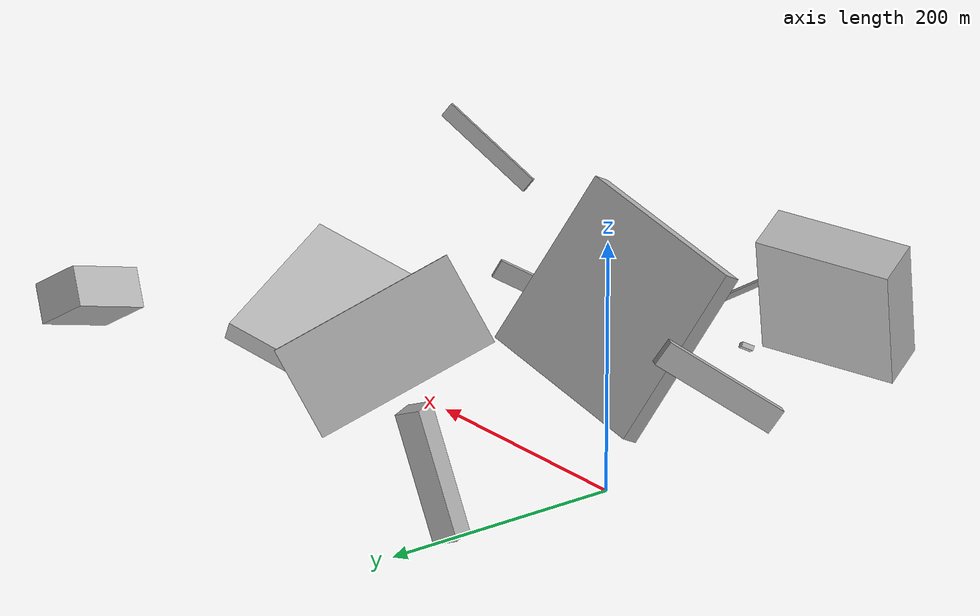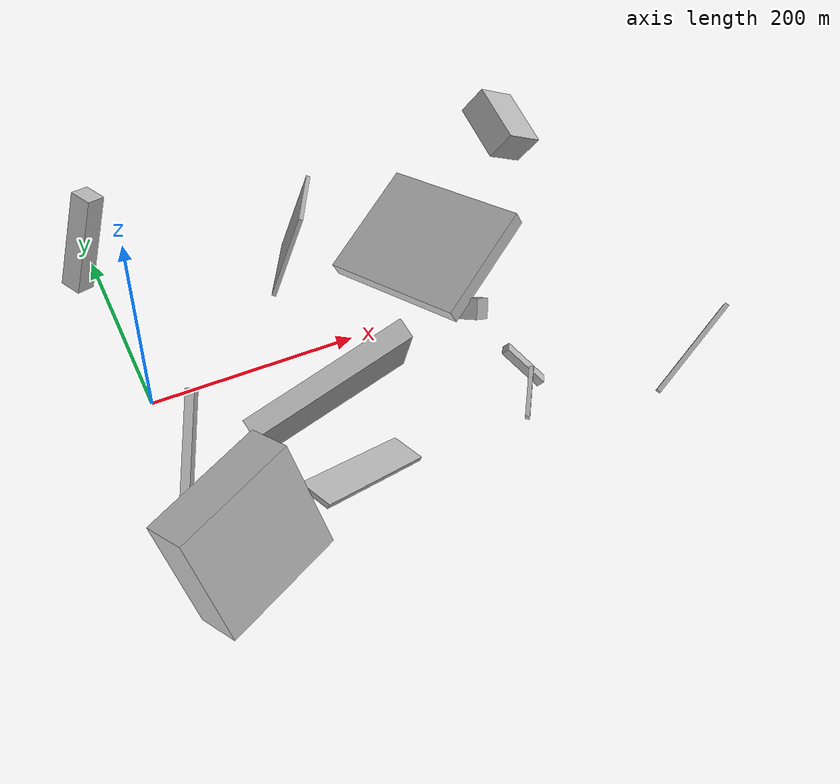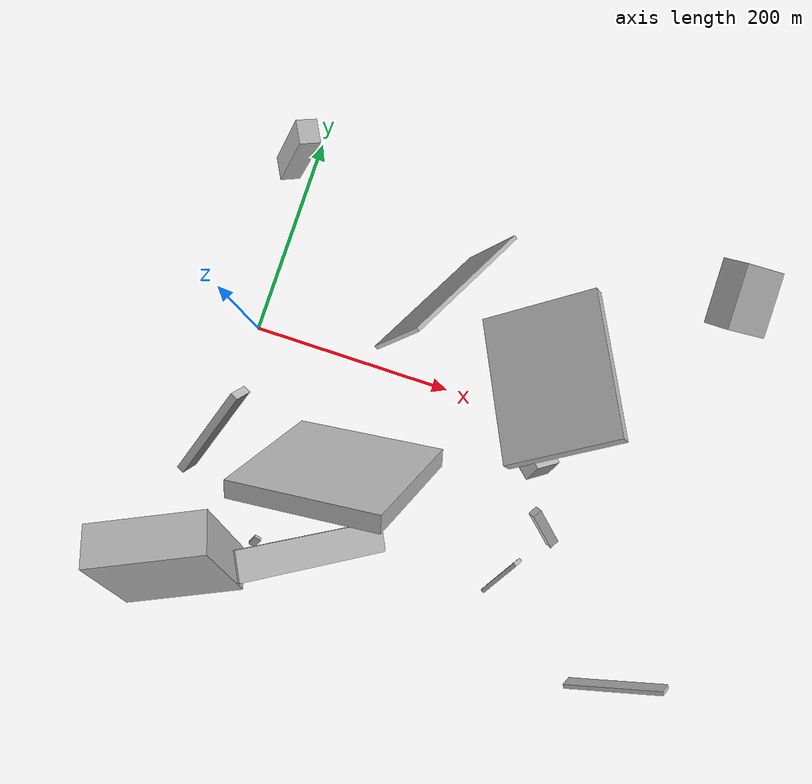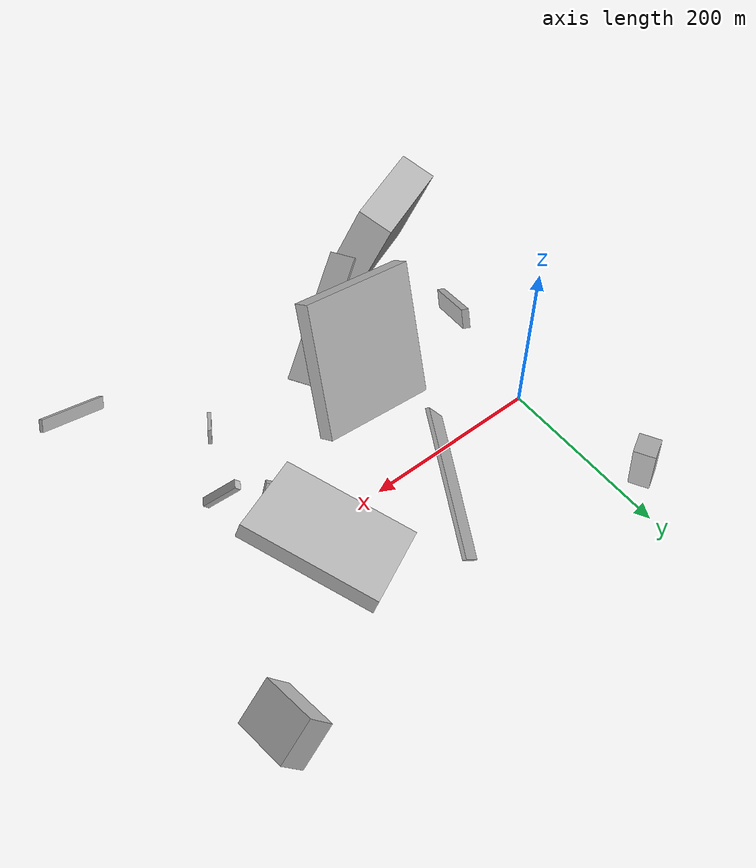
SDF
<sdf version="1.6">
 <world name="default">
  <scene>
   <sky><clouds><speed>12</speed></clouds></sky>
   <ambient>0.4 0.4 0.4 1</ambient>
   <background>0.7 0.7 0.7 1</background>
   <shadows>1</shadows>
  </scene>
  <gravity>0 0 -9.8066</gravity>
  <magnetic_field>6e-06 2.3e-05 -4.2e-05</magnetic_field>
  <physics default="0" name="default_physics" type="ode">
   <ode>
    <solver>
     <type>quick</type>
     <iters>10</iters>
     <sor>1.0</sor>
     <use_dynamic_moi_rescaling>0</use_dynamic_moi_rescaling>
    </solver>
    <constraints>
     <cfm>0</cfm>
     <erp>0.2</erp>
     <contact_max_correcting_vel>100</contact_max_correcting_vel>
     <contact_surface_layer>0.001</contact_surface_layer>
    </constraints>
   </ode>
   <max_step_size>0.004</max_step_size>
   <real_time_factor>1</real_time_factor>
   <real_time_update_rate>250</real_time_update_rate>
  </physics>
  <light name="sun" type="directional">
   <pose>0 0 10 0 0 0</pose>
   <diffuse>0.8 0.8 0.8 1</diffuse>
   <specular>0.2 0.2 0.2 1</specular>
   <attenuation>
    <range>1000</range>
    <constant>0.9</constant>
    <linear>0.01</linear>
    <quadratic>0.001</quadratic>
   </attenuation>
   <direction>-0.5 0.1 -0.9</direction>
  </light>
  <model name="building_1">
   <static>0</static>
   <pose>7.37837168634843 -113.55691965478074 55.5483793261063 1.5736277105468088 -0.9494389268724354 -2.0298790508520503</pose>
   <link name="link">
    <gravity>0</gravity>
    <pose>0 0 4.0 0 0 0</pose>
    <collision name="collision"><geometry><box><size>21 110 8</size></box></geometry></collision>
    <visual name="visual">
     <cast_shadows>0</cast_shadows>
     <geometry><box><size>21 110 8</size></box></geometry>
     <material>
      <script>
       <uri>model://HANNAS_wall/materials/scripts</uri>
       <uri>model://HANNAS_wall/materials/textures</uri>
       <name>vrc/HANNAS_wall</name>
      </script>
     </material>
    </visual>
   </link>
  </model>
  <model name="building_2">
   <static>0</static>
   <pose>76.29889867161961 -193.92067530706439 45.876685103621554 2.061002388873206 0.4744137246347404 -0.27243964213818894</pose>
   <link name="link">
    <gravity>0</gravity>
    <pose>0 0 5.0 0 0 0</pose>
    <collision name="collision"><geometry><box><size>7 4 10</size></box></geometry></collision>
    <visual name="visual">
     <cast_shadows>0</cast_shadows>
     <geometry><box><size>7 4 10</size></box></geometry>
     <material>
      <script>
       <uri>model://HANNAS_wall/materials/scripts</uri>
       <uri>model://HANNAS_wall/materials/textures</uri>
       <name>vrc/HANNAS_wall</name>
      </script>
     </material>
    </visual>
   </link>
  </model>
  <model name="building_3">
   <static>0</static>
   <pose>463.65096861017315 171.03717241524578 44.83231417582404 0.4621978462403764 -0.9318347324141829 -0.33391439616390584</pose>
   <link name="link">
    <gravity>0</gravity>
    <pose>0 0 24.5 0 0 0</pose>
    <collision name="collision"><geometry><box><size>33 64 49</size></box></geometry></collision>
    <visual name="visual">
     <cast_shadows>0</cast_shadows>
     <geometry><box><size>33 64 49</size></box></geometry>
     <material>
      <script>
       <uri>model://HANNAS_wall/materials/scripts</uri>
       <uri>model://HANNAS_wall/materials/textures</uri>
       <name>vrc/HANNAS_wall</name>
      </script>
     </material>
    </visual>
   </link>
  </model>
  <model name="building_4">
   <static>0</static>
   <pose>3.7126251459071042 -215.62287633374788 90.02742918085774 -0.2639526154801344 -1.2170908457713616 2.252754244325341</pose>
   <link name="link">
    <gravity>0</gravity>
    <pose>0 0 20.5 0 0 0</pose>
    <collision name="collision"><geometry><box><size>107 111 41</size></box></geometry></collision>
    <visual name="visual">
     <cast_shadows>0</cast_shadows>
     <geometry><box><size>107 111 41</size></box></geometry>
     <material>
      <script>
       <uri>model://HANNAS_wall/materials/scripts</uri>
       <uri>model://HANNAS_wall/materials/textures</uri>
       <name>vrc/HANNAS_wall</name>
      </script>
     </material>
    </visual>
   </link>
  </model>
  <model name="building_5">
   <static>0</static>
   <pose>318.42206358438864 -88.25953773399294 21.321559945431023 2.353480808609612 0.13403020220833042 1.029366601175694</pose>
   <link name="link">
    <gravity>0</gravity>
    <pose>0 0 25.5 0 0 0</pose>
    <collision name="collision"><geometry><box><size>10 8 51</size></box></geometry></collision>
    <visual name="visual">
     <cast_shadows>0</cast_shadows>
     <geometry><box><size>10 8 51</size></box></geometry>
     <material>
      <script>
       <uri>model://HANNAS_wall/materials/scripts</uri>
       <uri>model://HANNAS_wall/materials/textures</uri>
       <name>vrc/HANNAS_wall</name>
      </script>
     </material>
    </visual>
   </link>
  </model>
  <model name="building_6">
   <static>0</static>
   <pose>202.78436829821192 -105.63062847575736 99.18374307019735 2.109781632745984 -0.995474669906962 -1.935578083505889</pose>
   <link name="link">
    <gravity>0</gravity>
    <pose>0 0 75.0 0 0 0</pose>
    <collision name="collision"><geometry><box><size>150 18 150</size></box></geometry></collision>
    <visual name="visual">
     <cast_shadows>0</cast_shadows>
     <geometry><box><size>150 18 150</size></box></geometry>
     <material>
      <script>
       <uri>model://HANNAS_wall/materials/scripts</uri>
       <uri>model://HANNAS_wall/materials/textures</uri>
       <name>vrc/HANNAS_wall</name>
      </script>
     </material>
    </visual>
   </link>
  </model>
  <model name="building_7">
   <static>0</static>
   <pose>313.37964835154264 -34.791675598467464 27.33577423887057 0.8381812226556952 -0.24944047231470973 -0.7468598899059494</pose>
   <link name="link">
    <gravity>0</gravity>
    <pose>0 0 15.5 0 0 0</pose>
    <collision name="collision"><geometry><box><size>25 20 31</size></box></geometry></collision>
    <visual name="visual">
     <cast_shadows>0</cast_shadows>
     <geometry><box><size>25 20 31</size></box></geometry>
     <material>
      <script>
       <uri>model://HANNAS_wall/materials/scripts</uri>
       <uri>model://HANNAS_wall/materials/textures</uri>
       <name>vrc/HANNAS_wall</name>
      </script>
     </material>
    </visual>
   </link>
  </model>
  <model name="building_8">
   <static>0</static>
   <pose>136.52486982205545 -202.2747683471839 56.123367559220064 1.365094000037847 1.0230302486337326 -2.856360313598553</pose>
   <link name="link">
    <gravity>0</gravity>
    <pose>0 0 15.0 0 0 0</pose>
    <collision name="collision"><geometry><box><size>4 150 30</size></box></geometry></collision>
    <visual name="visual">
     <cast_shadows>0</cast_shadows>
     <geometry><box><size>4 150 30</size></box></geometry>
     <material>
      <script>
       <uri>model://HANNAS_wall/materials/scripts</uri>
       <uri>model://HANNAS_wall/materials/textures</uri>
       <name>vrc/HANNAS_wall</name>
      </script>
     </material>
    </visual>
   </link>
  </model>
  <model name="building_9">
   <static>0</static>
   <pose>296.94958749213856 35.28871319133931 49.66817220769031 0.38367234571630265 -0.21538070072545792 -1.129752703959169</pose>
   <link name="link">
    <gravity>0</gravity>
    <pose>0 0 8.0 0 0 0</pose>
    <collision name="collision"><geometry><box><size>150 117 16</size></box></geometry></collision>
    <visual name="visual">
     <cast_shadows>0</cast_shadows>
     <geometry><box><size>150 117 16</size></box></geometry>
     <material>
      <script>
       <uri>model://HANNAS_wall/materials/scripts</uri>
       <uri>model://HANNAS_wall/materials/textures</uri>
       <name>vrc/HANNAS_wall</name>
      </script>
     </material>
    </visual>
   </link>
  </model>
  <model name="building_10">
   <static>0</static>
   <pose>171.53348525427964 79.38485608599127 81.36355724035202 2.1816989393945163 -1.0061146172262756 0.4622410653587755</pose>
   <link name="link">
    <gravity>0</gravity>
    <pose>0 0 2.0 0 0 0</pose>
    <collision name="collision"><geometry><box><size>76 150 4</size></box></geometry></collision>
    <visual name="visual">
     <cast_shadows>0</cast_shadows>
     <geometry><box><size>76 150 4</size></box></geometry>
     <material>
      <script>
       <uri>model://HANNAS_wall/materials/scripts</uri>
       <uri>model://HANNAS_wall/materials/textures</uri>
       <name>vrc/HANNAS_wall</name>
      </script>
     </material>
    </visual>
   </link>
  </model>
  <model name="building_11">
   <static>0</static>
   <pose>427.3508563421572 -210.8676568331963 96.45726120686015 0.588190376364004 0.30278322500430027 -1.0425577418488832</pose>
   <link name="link">
    <gravity>0</gravity>
    <pose>0 0 6.5 0 0 0</pose>
    <collision name="collision"><geometry><box><size>4 94 13</size></box></geometry></collision>
    <visual name="visual">
     <cast_shadows>0</cast_shadows>
     <geometry><box><size>4 94 13</size></box></geometry>
     <material>
      <script>
       <uri>model://HANNAS_wall/materials/scripts</uri>
       <uri>model://HANNAS_wall/materials/textures</uri>
       <name>vrc/HANNAS_wall</name>
      </script>
     </material>
    </visual>
   </link>
  </model>
  <model name="building_12">
   <static>0</static>
   <pose>-2.5617292360158554 159.15637826152013 61.624164338839726 -1.4910705140392702 -1.2532670028253572 0.4178453452825618</pose>
   <link name="link">
    <gravity>0</gravity>
    <pose>0 0 11.5 0 0 0</pose>
    <collision name="collision"><geometry><box><size>102 20 23</size></box></geometry></collision>
    <visual name="visual">
     <cast_shadows>0</cast_shadows>
     <geometry><box><size>102 20 23</size></box></geometry>
     <material>
      <script>
       <uri>model://HANNAS_wall/materials/scripts</uri>
       <uri>model://HANNAS_wall/materials/textures</uri>
       <name>vrc/HANNAS_wall</name>
      </script>
     </material>
    </visual>
   </link>
  </model>
  <model name="building_13">
   <static>0</static>
   <pose>322.78456180672026 -0.924557484434825 34.71826571469071 0.52910369791721 -0.8894404586036088 -0.08856756004693929</pose>
   <link name="link">
    <gravity>0</gravity>
    <pose>0 0 8.0 0 0 0</pose>
    <collision name="collision"><geometry><box><size>4 24 16</size></box></geometry></collision>
    <visual name="visual">
     <cast_shadows>0</cast_shadows>
     <geometry><box><size>4 24 16</size></box></geometry>
     <material>
      <script>
       <uri>model://HANNAS_wall/materials/scripts</uri>
       <uri>model://HANNAS_wall/materials/textures</uri>
       <name>vrc/HANNAS_wall</name>
      </script>
     </material>
    </visual>
   </link>
  </model>
  <model name="building_14">
   <static>0</static>
   <pose>302.9816246093726 -158.98320963691785 44.29314859627314 -2.6397279182067512 -0.05283811454176974 -0.5650042359793519</pose>
   <link name="link">
    <gravity>0</gravity>
    <pose>0 0 8.0 0 0 0</pose>
    <collision name="collision"><geometry><box><size>4 45 16</size></box></geometry></collision>
    <visual name="visual">
     <cast_shadows>0</cast_shadows>
     <geometry><box><size>4 45 16</size></box></geometry>
     <material>
      <script>
       <uri>model://HANNAS_wall/materials/scripts</uri>
       <uri>model://HANNAS_wall/materials/textures</uri>
       <name>vrc/HANNAS_wall</name>
      </script>
     </material>
    </visual>
   </link>
  </model>
 </world>
</sdf>
